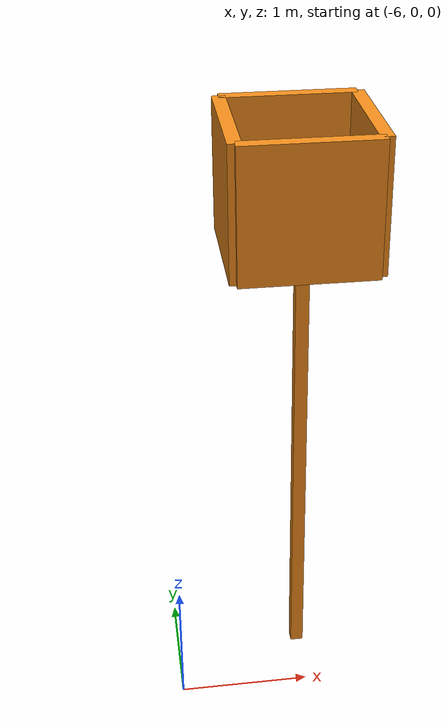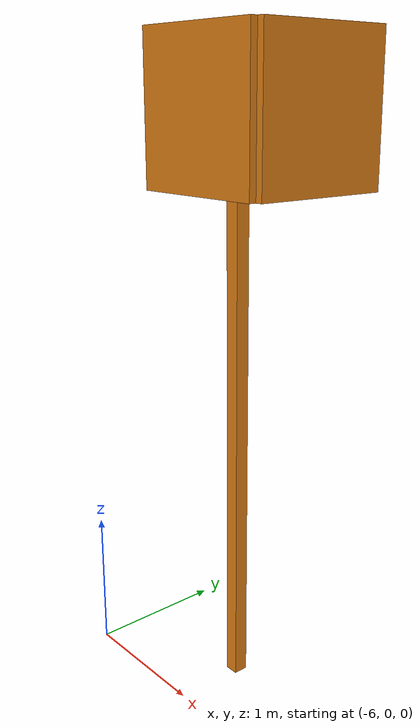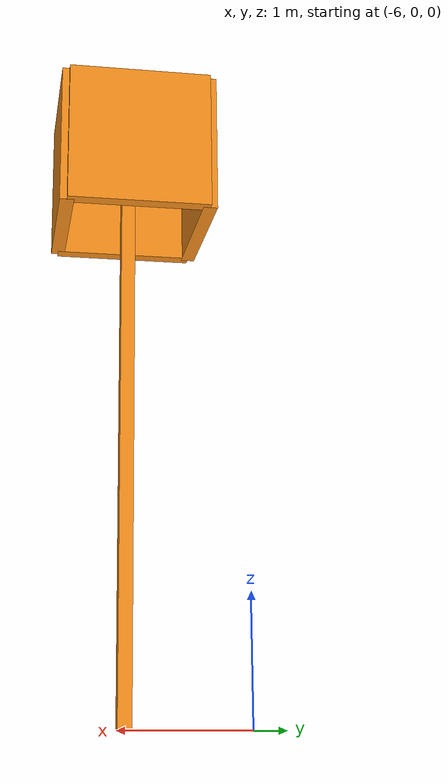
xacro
<?xml version="1.0"?>
<!-- Revolute-Revolute Manipulator -->
<robot name="net" xmlns:xacro="http://www.ros.org/wiki/xacro">
  <!-- Constants for robot dimensions -->
  <xacro:property name="distance" value="-5" /> <!-- distance from arm-->
  <xacro:property name="PI" value="3.1415926535897931"/>
  <xacro:property name="mass" value="100" /> <!-- arbitrary value for mass -->
  <xacro:property name="width" value="0.1" /> <!-- Square dimensions (widthxwidth) of beams -->
  <xacro:property name="height1" value="4" /> <!-- Link 1 -->
  <xacro:property name="height2" value="1" /> <!-- Link 2 -->
  <xacro:property name="height3" value="1" /> <!-- Link 3 -->
  <xacro:property name="camera_link" value="0.05" /> <!-- Size of square 'camera' box -->
  <xacro:property name="axel_offset" value="0.05" /> <!-- Space btw top of beam and the each joint -->
  <!-- Import all Gazebo-customization elements, including Gazebo colors -->
  <xacro:include filename="$(find rrbot_description)/urdf/net.gazebo" />
  <!-- Import Rviz colors -->
  <xacro:include filename="$(find rrbot_description)/urdf/materials.xacro" />
  <!-- Used for fixing robot to Gazebo 'base_link' -->
  <link name="base_footprint"/>

  <joint name="base_joint" type="fixed">
    <parent link="base_footprint"/>
    <child link="link1"/>
    <origin xyz="0.0 0.0 0.010" rpy="0 0 0"/>
  </joint>
  <!-- Base Link -->
  <link name="link1">
    <collision>
      <origin xyz="${distance} 0.5 ${height1/2}" rpy="0 0 0"/>
      <geometry>
  <box size="${width} ${width} ${height1}"/>
      </geometry>
    </collision>
    <visual>
      <origin xyz="${distance} 0.5 ${height1/2}" rpy="0 0 0"/>
      <geometry>
  <box size="${width} ${width} ${height1}"/>
      </geometry>
      <material name="orange"/>
    </visual>
    <inertial>
      <origin xyz="${distance} 0.5 ${height1/2}" rpy="0 0 0"/>
      <mass value="${mass}"/>
      <inertia
    ixx="${mass / 12.0 * (width*width + height1*height1)}" ixy="0.0" ixz="0.0"
    iyy="${mass / 12.0 * (height1*height1 + width*width)}" iyz="0.0"
    izz="${mass / 12.0 * (width*width + width*width)}"/>
    </inertial>
  </link>

  <!-- Box Links-->
  <link name="box1">
    <collision>
      <origin xyz="${distance} 0 0" rpy="0 0 0"/>
      <geometry>
	<box size="0.1 1 1"/>
      </geometry>
    </collision>
    <visual>
      <origin xyz="${distance} 0 0" rpy="0 0 0"/>
      <geometry>
	<box size="0.1 1 1"/>
      </geometry>
      <material name="orange"/>
    </visual>
  </link>
  <joint name="boxjoint1" type="fixed">
    <parent link="link1"/>
    <child link="box1"/>
    <origin xyz="0.5 0.7 4" rpy="0 0 0"/>
    <axis xyz="0 1 0"/>
    <dynamics damping="0.7"/>
  </joint>

  <link name="box2">
    <collision>
      <origin xyz="${distance} 0 0" rpy="0 0 0"/>
      <geometry>
	<box size="0.1 1 1"/>
      </geometry>
    </collision>
    <visual>
      <origin xyz="${distance} 0 0" rpy="0 0 0"/>
      <geometry>
	<box size="0.1 1 1"/>
      </geometry>
      <material name="orange"/>
    </visual>
  </link>
  <joint name="boxjoint2" type="fixed">
    <parent link="link1"/>
    <child link="box2"/>
    <origin xyz="-0.5 0.7 4" rpy="0 0 0"/>
    <axis xyz="0 1 0"/>
    <dynamics damping="0.7"/>
  </joint>

  <link name="box3">
    <collision>
      <origin xyz="${distance} 0 0" rpy="0 0 0"/>
      <geometry>
	<box size="1 0.1 1"/>
      </geometry>
    </collision>
    <visual>
      <origin xyz="${distance} 0 0" rpy="0 0 0"/>
      <geometry>
	<box size="1 0.1 1"/>
      </geometry>
      <material name="orange"/>
    </visual>
  </link>
  <joint name="boxjoint3" type="fixed">
    <parent link="link1"/>
    <child link="box3"/>
    <origin xyz="0 1.2 4" rpy="0 0 0"/>
    <axis xyz="0 1 0"/>
    <dynamics damping="0.7"/>
  </joint>

  <link name="box4">
    <collision>
      <origin xyz="${distance} 0 0" rpy="0 0 0"/>
      <geometry>
	<box size="1 0.1 1"/>
      </geometry>
    </collision>
    <visual>
      <origin xyz="${distance} 0 0" rpy="0 0 0"/>
      <geometry>
	<box size="1 0.1 1"/>
      </geometry>
      <material name="orange"/>
    </visual>
  </link>
  <joint name="boxjoint4" type="fixed">
    <parent link="link1"/>
    <child link="box4"/>
    <origin xyz="0 0.2 4" rpy="0 0 0"/>
    <axis xyz="0 1 0"/>
    <dynamics damping="0.7"/>
  </joint>

  <!-- End Box Links-->
</robot>
